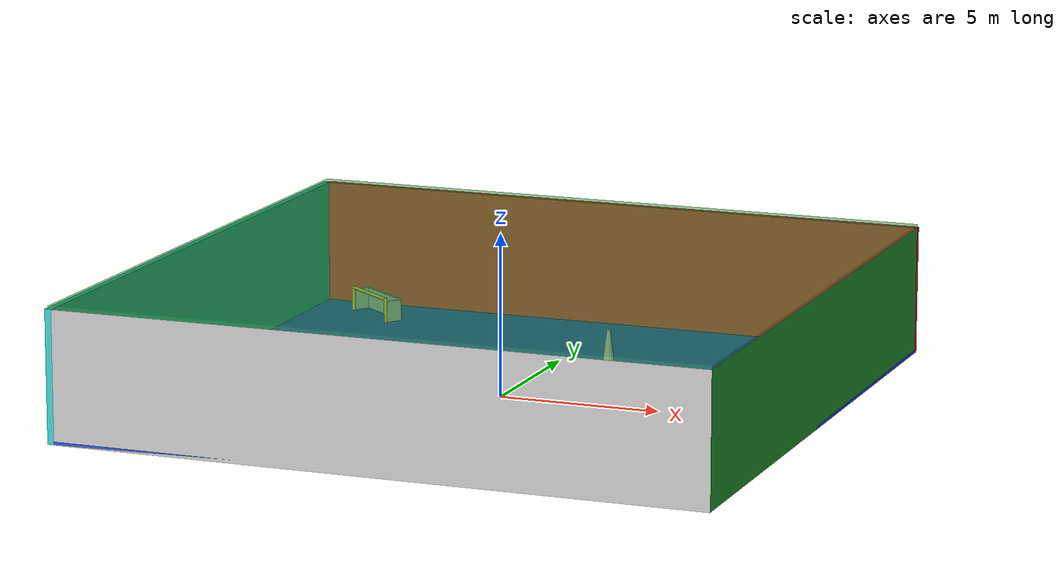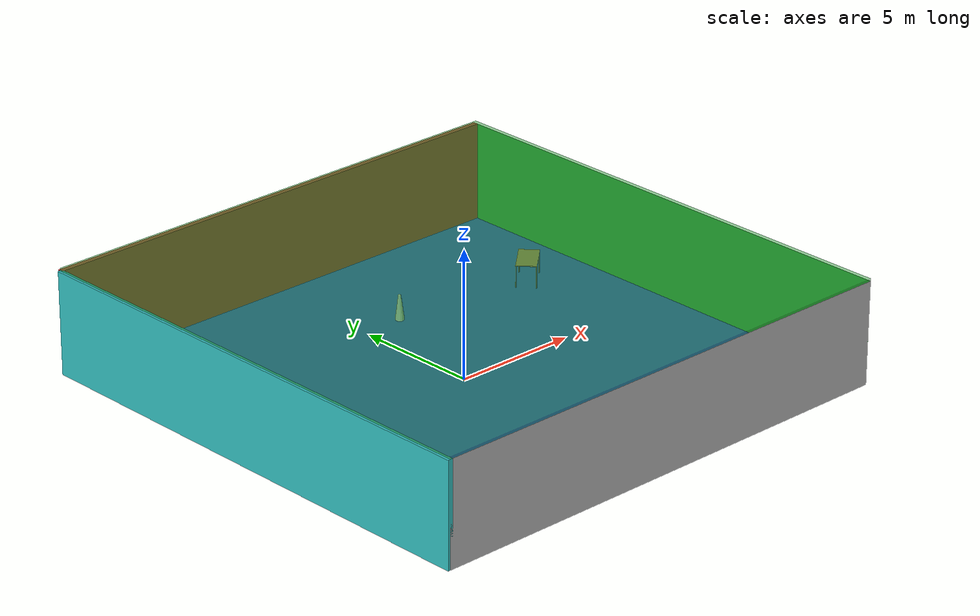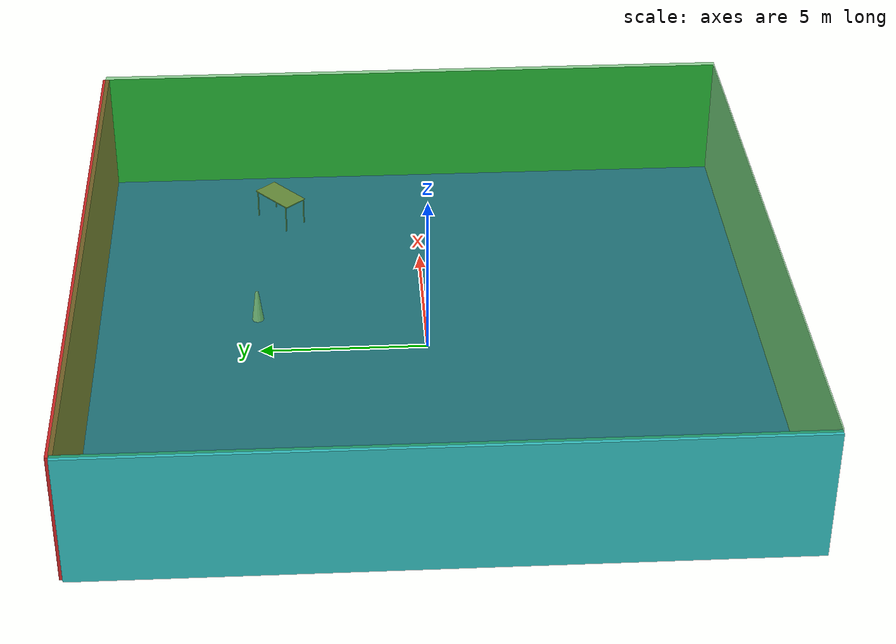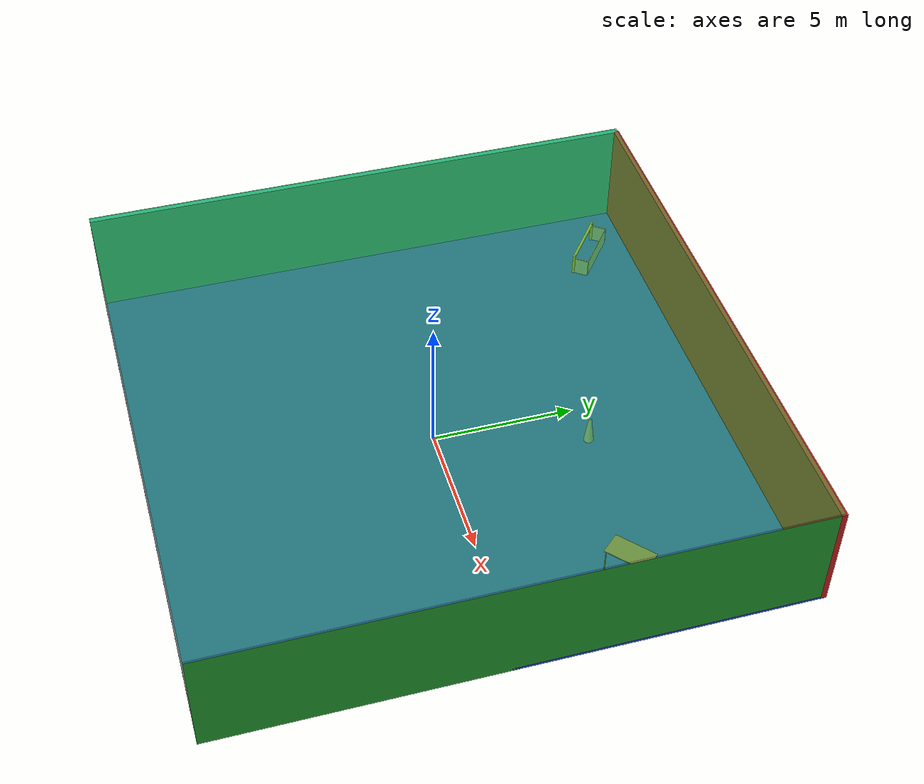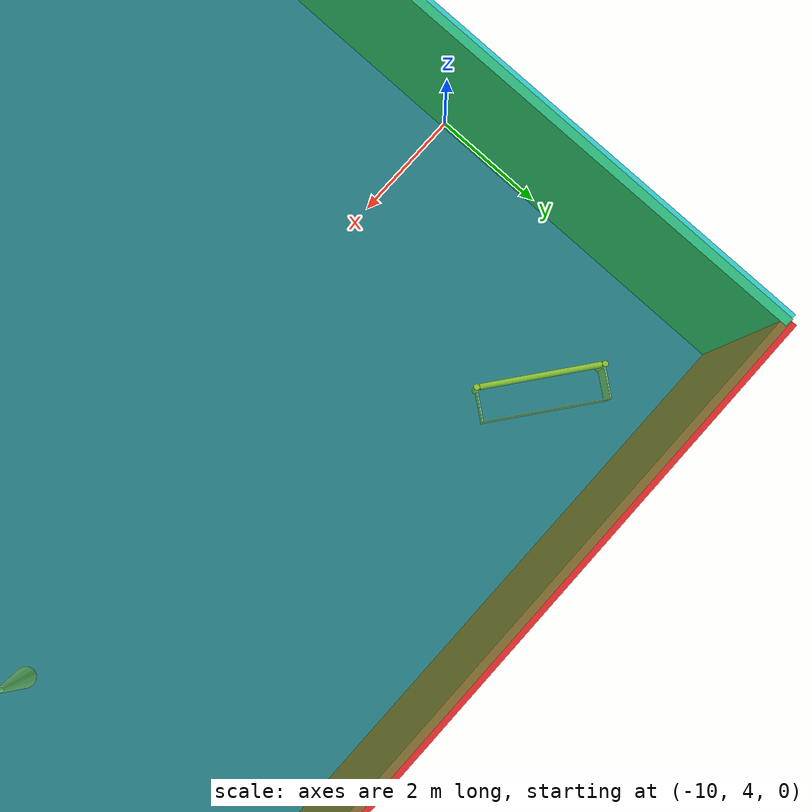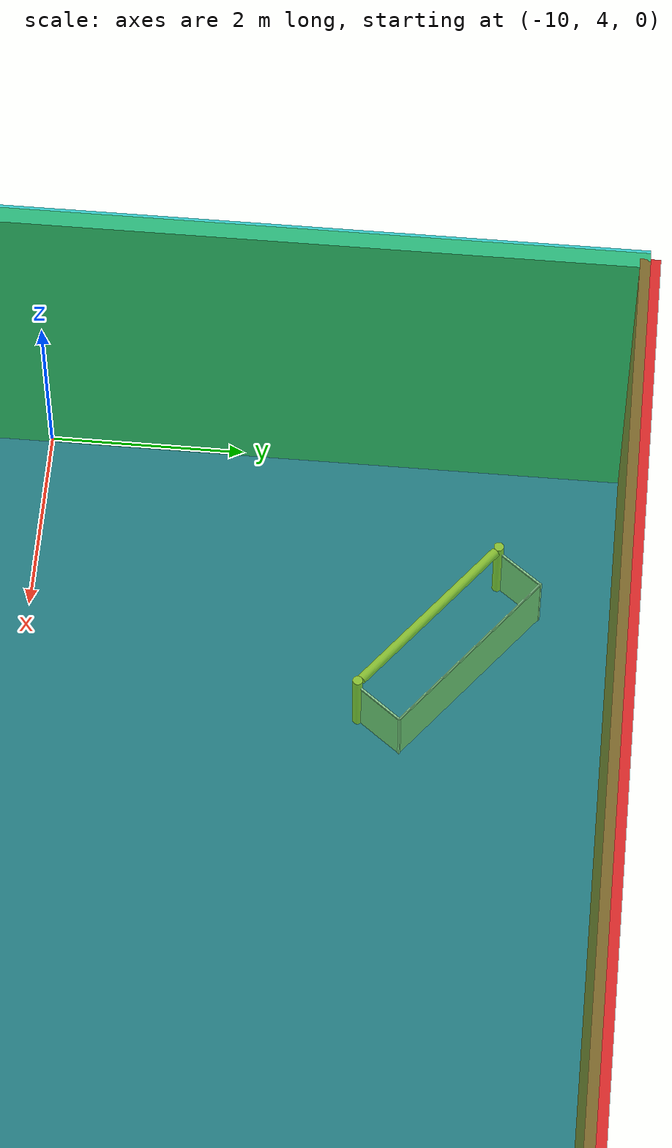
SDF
<sdf version="1.4">
 <world name="default">
  <physics type="ode">
   <max_step_size>0.001</max_step_size>
   <real_time_factor>1</real_time_factor>
   <real_time_update_rate>1000</real_time_update_rate>
   <gravity>0 0 -9.8</gravity>
  </physics>
  <scene><ambient>0.4 0.4 0.4 1</ambient><background>0.7 0.7 0.7 1</background><shadows>1</shadows></scene>
  <model name="Surrounding">
   <static>1</static>
   <link name="Ceiling">
    <collision name="Ceiling_Collision"><geometry><box><size>20 20 0.1</size></box></geometry></collision>
    <visual name="Ceiling_Visual">
     <geometry><box><size>20 20 0.1</size></box></geometry>
     <material>
      <script><uri>file://media/materials/scripts/gazebo.material</uri><name>Gazebo/GreenTransparent</name></script>
     </material>
    </visual>
    <pose>0 0 4.05 0 0 0</pose>
   </link>
   <link name="Wall_South">
    <collision name="Wall_South_Collision">
     <geometry><box><size>20 0 4</size></box></geometry>
     <pose>0 0 2 0 -0 0</pose>
    </collision>
    <visual name="Wall_South_Visual">
     <pose>0 0 2 0 -0 0</pose>
     <geometry><box><size>20 0 4</size></box></geometry>
     <material>
      <script><uri>file://media/materials/scripts/gazebo.material</uri><name>Gazebo/LightOff</name></script>
     </material>
    </visual>
    <velocity_decay><linear>0</linear><angular>0</angular></velocity_decay>
    <pose>0 -10 0 0 -0 0</pose>
   </link>
   <link name="Wall_East">
    <collision name="Wall_21_Collision">
     <geometry><box><size>20 0 4</size></box></geometry>
     <pose>0 0 2 0 -0 0</pose>
    </collision>
    <visual name="Wall_21_Visual">
     <pose>0 0 2 0 -0 0</pose>
     <geometry><box><size>20 0 4</size></box></geometry>
     <material>
      <script><uri>file://media/materials/scripts/gazebo.material</uri><name>Gazebo/GreenGlow</name></script>
     </material>
    </visual>
    <velocity_decay><linear>0</linear><angular>0</angular></velocity_decay>
    <pose>10 0 0 0 -0 1.5708</pose>
   </link>
   <link name="Wall_North">
    <collision name="Wall_22_Collision">
     <geometry><box><size>20 0.2 4</size></box></geometry>
     <pose>0 0 2 0 -0 0</pose>
    </collision>
    <visual name="Wall_22_Visual">
     <pose>0 0 2 0 -0 0</pose>
     <geometry><box><size>20 0.2 4</size></box></geometry>
     <material>
      <script><uri>file://media/materials/scripts/gazebo.material</uri><name>Gazebo/RedBright</name></script>
     </material>
    </visual>
    <velocity_decay><linear>0</linear><angular>0</angular></velocity_decay>
    <pose>0 10 0 0 -0 0</pose>
   </link>
   <link name="Wall_West">
    <collision name="Wall_23_Collision">
     <geometry><box><size>20 0.2 4</size></box></geometry>
     <pose>0 0 2 0 -0 0</pose>
    </collision>
    <visual name="Wall_23_Visual">
     <pose>0 0 2 0 -0 0</pose>
     <geometry><box><size>20 0.2 4</size></box></geometry>
     <material>
      <script><uri>file://media/materials/scripts/gazebo.material</uri><name>Gazebo/Turquoise</name></script>
     </material>
    </visual>
    <velocity_decay><linear>0</linear><angular>0</angular></velocity_decay>
    <pose>-10 0 0 0 0 -1.5708</pose>
   </link>
   <link name="Ground_link">
    <collision name="collision">
     <pose>0 0 .05 0 -0 0</pose>
     <geometry><box><size>20 20 0.1</size></box></geometry>
    </collision>
    <visual name="visual">
     <pose>0 0 .05 0 -0 0</pose>
     <geometry><box><size>20 20 0.1</size></box></geometry>
     <material>
      <script><uri>file://media/materials/scripts/gazebo.material</uri><name>Gazebo/BlueLaser</name></script>
     </material>
    </visual>
   </link>
   <static>1</static>
  </model>
  <spherical_coordinates>
   <surface_model>EARTH_WGS84</surface_model>
   <latitude_deg>0</latitude_deg>
   <longitude_deg>0</longitude_deg>
   <elevation>0</elevation>
   <heading_deg>0</heading_deg>
  </spherical_coordinates>
  <light name="lightball_0" type="diffuse">
   <diffuse>0.8 0.8 0.8 1</diffuse>
   <specular>0.2 0.2 0.2 1</specular>
   <attenuation>
    <range>100</range>
    <constant>0.7</constant>
    <linear>0.01</linear>
    <quadratic>0.001</quadratic>
   </attenuation>
   <direction>-0.5 0.1 -0.9</direction>
   <pose>5.09373266242 -2.98465993957 1.36713261322 0 0 0</pose>
  </light>
  <light name="lightball_1" type="diffuse">
   <diffuse>0.8 0.8 0.8 1</diffuse>
   <specular>0.2 0.2 0.2 1</specular>
   <attenuation>
    <range>100</range>
    <constant>0.7</constant>
    <linear>0.01</linear>
    <quadratic>0.001</quadratic>
   </attenuation>
   <direction>-0.5 0.1 -0.9</direction>
   <pose>2.72214325967 0.47071967931 2.50440364046 0 0 0</pose>
  </light>
  <light name="lightball_2" type="diffuse">
   <diffuse>0.8 0.8 0.8 1</diffuse>
   <specular>0.2 0.2 0.2 1</specular>
   <attenuation>
    <range>100</range>
    <constant>0.7</constant>
    <linear>0.01</linear>
    <quadratic>0.001</quadratic>
   </attenuation>
   <direction>-0.5 0.1 -0.9</direction>
   <pose>7.54027369997 2.33548796669 3.22545257383 0 0 0</pose>
  </light>
  <light name="lightball_3" type="diffuse">
   <diffuse>0.8 0.8 0.8 1</diffuse>
   <specular>0.2 0.2 0.2 1</specular>
   <attenuation>
    <range>100</range>
    <constant>0.7</constant>
    <linear>0.01</linear>
    <quadratic>0.001</quadratic>
   </attenuation>
   <direction>-0.5 0.1 -0.9</direction>
   <pose>2.97685221038 -4.64868178235 1.44478733924 0 0 0</pose>
  </light>
  <light name="lightball_4" type="diffuse">
   <diffuse>0.8 0.8 0.8 1</diffuse>
   <specular>0.2 0.2 0.2 1</specular>
   <attenuation>
    <range>100</range>
    <constant>0.7</constant>
    <linear>0.01</linear>
    <quadratic>0.001</quadratic>
   </attenuation>
   <direction>-0.5 0.1 -0.9</direction>
   <pose>7.64171428944 -7.46547109359 2.28558156097 0 0 0</pose>
  </light>
  <light name="lightball_5" type="diffuse">
   <diffuse>0.8 0.8 0.8 1</diffuse>
   <specular>0.2 0.2 0.2 1</specular>
   <attenuation>
    <range>100</range>
    <constant>0.7</constant>
    <linear>0.01</linear>
    <quadratic>0.001</quadratic>
   </attenuation>
   <direction>-0.5 0.1 -0.9</direction>
   <pose>-9.47328953895 -1.35218132741 3.12319943211 0 0 0</pose>
  </light>
  <light name="lightball_6" type="diffuse">
   <diffuse>0.8 0.8 0.8 1</diffuse>
   <specular>0.2 0.2 0.2 1</specular>
   <attenuation>
    <range>100</range>
    <constant>0.7</constant>
    <linear>0.01</linear>
    <quadratic>0.001</quadratic>
   </attenuation>
   <direction>-0.5 0.1 -0.9</direction>
   <pose>-8.96381369425 8.58587132424 3.67064432724 0 0 0</pose>
  </light>
  <light name="lightball_7" type="diffuse">
   <diffuse>0.8 0.8 0.8 1</diffuse>
   <specular>0.2 0.2 0.2 1</specular>
   <attenuation>
    <range>100</range>
    <constant>0.7</constant>
    <linear>0.01</linear>
    <quadratic>0.001</quadratic>
   </attenuation>
   <direction>-0.5 0.1 -0.9</direction>
   <pose>-5.6216399528 -4.38553598034 1.51396770852 0 0 0</pose>
  </light>
  <light name="lightball_8" type="diffuse">
   <diffuse>0.8 0.8 0.8 1</diffuse>
   <specular>0.2 0.2 0.2 1</specular>
   <attenuation>
    <range>100</range>
    <constant>0.7</constant>
    <linear>0.01</linear>
    <quadratic>0.001</quadratic>
   </attenuation>
   <direction>-0.5 0.1 -0.9</direction>
   <pose>-6.4358460497 9.67630090737 2.33958633383 0 0 0</pose>
  </light>
  <light name="lightball_9" type="diffuse">
   <diffuse>0.8 0.8 0.8 1</diffuse>
   <specular>0.2 0.2 0.2 1</specular>
   <attenuation>
    <range>100</range>
    <constant>0.7</constant>
    <linear>0.01</linear>
    <quadratic>0.001</quadratic>
   </attenuation>
   <direction>-0.5 0.1 -0.9</direction>
   <pose>-5.18248499718 -9.56285289067 3.50670803946 0 0 0</pose>
  </light>
  <light name="lightball_10" type="diffuse">
   <diffuse>0.8 0.8 0.8 1</diffuse>
   <specular>0.2 0.2 0.2 1</specular>
   <attenuation>
    <range>100</range>
    <constant>0.7</constant>
    <linear>0.01</linear>
    <quadratic>0.001</quadratic>
   </attenuation>
   <direction>-0.5 0.1 -0.9</direction>
   <pose>-9.26434506625 6.2424785874 2.45587913034 0 0 0</pose>
  </light>
  <light name="lightball_11" type="diffuse">
   <diffuse>0.8 0.8 0.8 1</diffuse>
   <specular>0.2 0.2 0.2 1</specular>
   <attenuation>
    <range>100</range>
    <constant>0.7</constant>
    <linear>0.01</linear>
    <quadratic>0.001</quadratic>
   </attenuation>
   <direction>-0.5 0.1 -0.9</direction>
   <pose>9.97995466795 1.17450173103 2.39422733871 0 0 0</pose>
  </light>
  <light name="lightball_12" type="diffuse">
   <diffuse>0.8 0.8 0.8 1</diffuse>
   <specular>0.2 0.2 0.2 1</specular>
   <attenuation>
    <range>100</range>
    <constant>0.7</constant>
    <linear>0.01</linear>
    <quadratic>0.001</quadratic>
   </attenuation>
   <direction>-0.5 0.1 -0.9</direction>
   <pose>-7.54287426408 -4.31409086663 1.04370129038 0 0 0</pose>
  </light>
  <include>
   <uri>model://robocup_3Dsim_goal</uri>
   <pose>-7.71049876579 8.09443703415 0 0 0 0.912059207795</pose>
  </include>
  <include>
   <uri>model://construction_cone</uri>
   <pose>1.57329661584 5.09904134081 0 0 0 1.4965280196</pose>
  </include>
  <include><uri>model://table</uri><pose>7.37634089944 4.41268067091 0 0 0 0.726397224357</pose></include>
 </world>
</sdf>

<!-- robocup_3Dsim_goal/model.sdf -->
<sdf version="1.5">
  <model name="robocup_3d_goal">
    <static>true</static>
    <link name="left_post">
      <pose>0 1.05 0.45 0 0 0</pose>
      <collision name="collision">
        <geometry>
          <cylinder>
            <radius>0.05</radius>
            <length>0.9</length>
          </cylinder>
        </geometry>
      </collision>
      <visual name="visual">
        <geometry>
          <cylinder>
            <radius>0.05</radius>
            <length>0.9</length>
          </cylinder>
        </geometry>
        <material>
          <script>
            <uri>file://media/materials/scripts/gazebo.material</uri>
            <name>Gazebo/ZincYellow</name>
          </script>
        </material>
      </visual>
    </link>
    <link name="left_support_horiz_lower">
      <pose>0.30 1.05 0.01 0 0 0</pose>
      <collision name="collision">
        <geometry>
          <box>
            <size>0.50 0.02 0.02</size>
          </box>
        </geometry>
      </collision>
      <visual name="visual">
        <geometry>
          <box>
            <size>0.50 0.02 0.02</size>
          </box>
        </geometry>
        <material>
          <script>
            <uri>file://media/materials/scripts/gazebo.material</uri>
            <name>Gazebo/White</name>
          </script>
        </material>
      </visual>
    </link>
    <link name="left_support_horiz_upper">
      <pose>0.30 1.05 0.79 0 0 0</pose>
      <collision name="collision">
        <geometry>
          <box>
            <size>0.50 0.02 0.02</size>
          </box>
        </geometry>
      </collision>
      <visual name="visual">
        <geometry>
          <box>
            <size>0.50 0.02 0.02</size>
          </box>
        </geometry>
        <material>
          <script>
            <uri>file://media/materials/scripts/gazebo.material</uri>
            <name>Gazebo/White</name>
          </script>
        </material>
      </visual>
    </link>
    <link name="left_support_vertical">
      <pose>0.56 1.05 0.4 0 1.5708 0</pose>
      <collision name="collision">
        <geometry>
          <box>
            <size>0.80 0.02 0.02</size>
          </box>
        </geometry>
      </collision>
      <visual name="visual">
        <geometry>
          <box>
            <size>0.80 0.02 0.02</size>
          </box>
        </geometry>
        <material>
          <script>
            <uri>file://media/materials/scripts/gazebo.material</uri>
            <name>Gazebo/White</name>
          </script>
        </material>
      </visual>
    </link>
    <link name="right_support_horiz_lower">
      <pose>0.30 -1.05 0.01 0 0 0</pose>
      <collision name="collision">
        <geometry>
          <box>
            <size>0.50 0.02 0.02</size>
          </box>
        </geometry>
      </collision>
      <visual name="visual">
        <geometry>
          <box>
            <size>0.50 0.02 0.02</size>
          </box>
        </geometry>
        <material>
          <script>
            <uri>file://media/materials/scripts/gazebo.material</uri>
            <name>Gazebo/White</name>
          </script>
        </material>
      </visual>
    </link>
    <link name="right_support_horiz_upper">
      <pose>0.30 -1.05 0.79 0 0 0</pose>
      <collision name="collision">
        <geometry>
          <box>
            <size>0.50 0.02 0.02</size>
          </box>
        </geometry>
      </collision>
      <visual name="visual">
        <geometry>
          <box>
            <size>0.50 0.02 0.02</size>
          </box>
        </geometry>
        <material>
          <script>
            <uri>file://media/materials/scripts/gazebo.material</uri>
            <name>Gazebo/White</name>
          </script>
        </material>
      </visual>
    </link>
    <link name="right_support_vertical">
      <pose>0.56 -1.05 0.4 0 1.5708 0</pose>
      <collision name="collision">
        <geometry>
          <box>
            <size>0.80 0.02 0.02</size>
          </box>
        </geometry>
      </collision>
      <visual name="visual">
        <geometry>
          <box>
            <size>0.80 0.02 0.02</size>
          </box>
        </geometry>
        <material>
          <script>
            <uri>file://media/materials/scripts/gazebo.material</uri>
            <name>Gazebo/White</name>
          </script>
        </material>
      </visual>
    </link>
    <link name="center_support_horiz_lower">
      <pose>0.56 0 0.01 0 1.5708 0</pose>
      <collision name="collision">
        <geometry>
          <box>
            <size>0.02 2.08 0.02</size>
          </box>
        </geometry>
      </collision>
      <visual name="visual">
        <geometry>
          <box>
            <size>0.02 2.08 0.02</size>
          </box>
        </geometry>
        <material>
          <script>
            <uri>file://media/materials/scripts/gazebo.material</uri>
            <name>Gazebo/White</name>
          </script>
        </material>
      </visual>
    </link>
    <link name="center_support_horiz_upper">
      <pose>0.56 0 0.79 0 1.5708 0</pose>
      <collision name="collision">
        <geometry>
          <box>
            <size>0.02 2.08 0.02</size>
          </box>
        </geometry>
      </collision>
      <visual name="visual">
        <geometry>
          <box>
            <size>0.02 2.08 0.02</size>
          </box>
        </geometry>
        <material>
          <script>
            <uri>file://media/materials/scripts/gazebo.material</uri>
            <name>Gazebo/White</name>
          </script>
        </material>
      </visual>
    </link>
    <link name="right_post">
      <pose>0 -1.05 0.45 0 0 0</pose>
      <collision name="collision">
        <geometry>
          <cylinder>
            <radius>0.05</radius>
            <length>0.9</length>
          </cylinder>
        </geometry>
      </collision>
      <visual name="visual">
        <geometry>
          <cylinder>
            <radius>0.05</radius>
            <length>0.9</length>
          </cylinder>
        </geometry>
        <material>
          <script>
            <uri>file://media/materials/scripts/gazebo.material</uri>
            <name>Gazebo/ZincYellow</name>
          </script>
        </material>
      </visual>
    </link>
    <link name="crossbar">
      <pose>0 0 0.85 1.57 1.57 0</pose>
      <collision name="collision">
        <geometry>
          <cylinder>
            <radius>0.05</radius>
            <length>2.0</length>
          </cylinder>
        </geometry>
      </collision>
      <visual name="visual">
        <geometry>
          <cylinder>
            <radius>0.05</radius>
            <length>2.0</length>
          </cylinder>
        </geometry>
        <material>
          <script>
            <uri>file://media/materials/scripts/gazebo.material</uri>
            <name>Gazebo/ZincYellow</name>
          </script>
        </material>
      </visual>
    </link>
    <link name="center_net">
      <pose>0.56 0 0.40 0 0 0</pose>
      <collision name="collision">
        <geometry>
          <box>
            <size>0.01 2.1 0.80</size>
          </box>
        </geometry>
      </collision>
      <visual name="visual">
        <geometry>
          <box>
            <size>0.01 2.1 0.80</size>
          </box>
        </geometry>
        <material>
          <script>
            <uri>model://../model_source/models/robocup09_spl_field/materials/scripts/</uri>
            <uri>model://../model_source/models/robocup09_spl_field/materials/textures/</uri>
            <name>RoboCup/Net</name>
          </script>
        </material>
      </visual>
    </link>
    <link name="left_net">
      <pose>0.30 1.05 0.40 0 0 0</pose>
      <collision name="collision">
        <geometry>
          <box>
            <size>0.50 0.01 0.76</size>
          </box>
        </geometry>
      </collision>
      <visual name="visual">
        <geometry>
          <box>
            <size>0.50 0.01 0.76</size>
          </box>
        </geometry>
        <material>
          <script>
            <uri>model://../model_source/models/robocup09_spl_field/materials/scripts/</uri>
            <uri>model://../model_source/models/robocup09_spl_field/materials/textures/</uri>
            <name>RoboCup/Net</name>
          </script>
        </material>
      </visual>
    </link>
    <link name="right_net">
      <pose>0.30 -1.05 0.40 0 0 0</pose>
      <collision name="collision">
        <geometry>
          <box>
            <size>0.50 0.01 0.76</size>
          </box>
        </geometry>
      </collision>
      <visual name="visual">
        <geometry>
          <box>
            <size>0.50 0.01 0.76</size>
          </box>
        </geometry>
        <material>
          <script>
            <uri>model://../model_source/models/robocup09_spl_field/materials/scripts/</uri>
            <uri>model://../model_source/models/robocup09_spl_field/materials/textures/</uri>
            <name>RoboCup/Net</name>
          </script>
        </material>
      </visual>
    </link>
  </model>
</sdf>

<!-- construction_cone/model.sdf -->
<sdf version="1.5">
  <model name="Construction Cone">
    <link name="link">
      <collision name="collision">
        <geometry>
          <mesh>
            <scale>10 10 10</scale>
            <uri>file://isr-testbed/construction_cone/meshes/construction_cone.dae</uri>
          </mesh>
        </geometry>
      </collision>
      <visual name="visual">
        <geometry>
          <mesh>
            <scale>10 10 10</scale>
            <uri>file://isr-testbed/construction_cone/meshes/construction_cone.dae</uri>
          </mesh>
        </geometry>
      </visual>
    </link>
  </model>
</sdf>

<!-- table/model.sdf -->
<sdf version="1.5">
  <model name="table">
    <static>true</static>
    <link name="link">
      <collision name="surface">
        <pose>0 0 1.0 0 0 0</pose>
        <geometry>
          <box>
            <size>1.5 0.8 0.03</size>
          </box>
        </geometry>
        <surface>
          <friction>
            <ode>
              <mu>0.6</mu>
              <mu2>0.6</mu2>
            </ode>
          </friction>
        </surface>
      </collision>
      <visual name="visual1">
        <pose>0 0 1.0 0 0 0</pose>
        <geometry>
          <box>
            <size>1.5 0.8 0.03</size>
          </box>
        </geometry>
        <material>
          <script>
            <uri>model://media/materials/scripts/gazebo.material</uri>
            <name>Gazebo/Wood</name>
          </script>
        </material>
      </visual>
      <collision name="front_left_leg">
        <pose>0.68 0.38 0.5 0 0 0</pose>
        <geometry>
          <cylinder>
            <radius>0.02</radius>
            <length>1.0</length>
          </cylinder>
        </geometry>
      </collision>
      <visual name="front_left_leg">
        <pose>0.68 0.38 0.5 0 0 0</pose>
        <geometry>
          <cylinder>
            <radius>0.02</radius>
            <length>1.0</length>
          </cylinder>
        </geometry>
        <material>
          <script>
            <uri>model://media/materials/scripts/gazebo.material</uri>
            <name>Gazebo/Grey</name>
          </script>
        </material>
      </visual>
      <collision name="front_right_leg">
        <pose>0.68 -0.38 0.5 0 0 0</pose>
        <geometry>
          <cylinder>
            <radius>0.02</radius>
            <length>1.0</length>
          </cylinder>
        </geometry>
      </collision>
      <visual name="front_right_leg">
        <pose>0.68 -0.38 0.5 0 0 0</pose>
        <geometry>
          <cylinder>
            <radius>0.02</radius>
            <length>1.0</length>
          </cylinder>
        </geometry>
        <material>
          <script>
            <uri>model://media/materials/scripts/gazebo.material</uri>
            <name>Gazebo/Grey</name>
          </script>
        </material>
      </visual>
      <collision name="back_right_leg">
        <pose>-0.68 -0.38 0.5 0 0 0</pose>
        <geometry>
          <cylinder>
            <radius>0.02</radius>
            <length>1.0</length>
          </cylinder>
        </geometry>
      </collision>
      <visual name="back_right_leg">
        <pose>-0.68 -0.38 0.5 0 0 0</pose>
        <geometry>
          <cylinder>
            <radius>0.02</radius>
            <length>1.0</length>
          </cylinder>
        </geometry>
        <material>
          <script>
            <uri>model://media/materials/scripts/gazebo.material</uri>
            <name>Gazebo/Grey</name>
          </script>
        </material>
      </visual>
      <collision name="back_left_leg">
        <pose>-0.68 0.38 0.5 0 0 0</pose>
        <geometry>
          <cylinder>
            <radius>0.02</radius>
            <length>1.0</length>
          </cylinder>
        </geometry>
      </collision>
      <visual name="back_left_leg">
        <pose>-0.68 0.38 0.5 0 0 0</pose>
        <geometry>
          <cylinder>
            <radius>0.02</radius>
            <length>1.0</length>
          </cylinder>
        </geometry>
        <material>
          <script>
            <uri>model://media/materials/scripts/gazebo.material</uri>
            <name>Gazebo/Grey</name>
          </script>
        </material>
      </visual>
    </link>
  </model>
</sdf>
